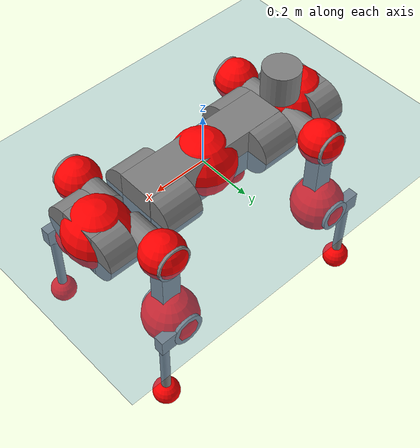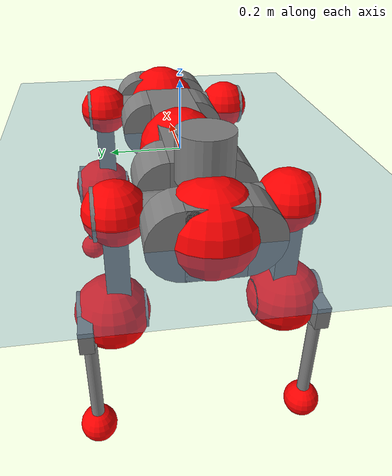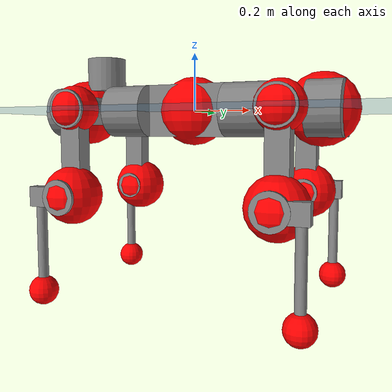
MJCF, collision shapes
<mujoco model="anymal_c">
  <compiler angle="radian" assetdir="assets" balanceinertia="true" inertiafromgeom="false"/>

  <option timestep="0.005" density="1.2" viscosity="2e-05"/>

  <size nkey="1"/>

  <visual>
    <quality shadowsize="8192"/>
    <map shadowclip="0.5"/>
  </visual>

  <default>
    <default class="/">
      <material specular="0" shininess="0.25"/>
      <geom contype="0" conaffinity="0" group="1" solref="-1000 -80"/>
      <site size="0.01 0.005 0.005" group="5"/>
      <general forcelimited="true" forcerange="-80 80" biastype="affine" gainprm="80" biasprm="0 -80 -2"/>
      <default class="anymal_c">
        <joint armature="0.01" damping="0.01" frictionloss="0.1"/>
        <default class="visual">
          <geom type="mesh" group="2"/>
          <default class="visual_zflip"/>
        </default>
        <default class="collision">
          <geom type="cylinder" group="3"/>
          <default class="foot">
            <geom size="0.03 0 0" type="sphere" condim="6" priority="1" friction="0.8 0.02 0.01" solimp="0.015 1 0.03"/>
          </default>
        </default>
      </default>
      <default class="reward_collision_sphere">
        <geom group="5" rgba="1 0 0 1"/>
      </default>
    </default>
  </default>

  <asset>
    <texture type="skybox" colorspace="auto" name="//unnamed_texture_0" builtin="gradient" rgb1="0.95 0.95 0.95" rgb2="0.95 0.95 0.95" width="100" height="600"/>
    <texture type="2d" colorspace="auto" name="texplane" builtin="checker" rgb1="0.345 0.575 0.748" rgb2="0.345 0.575 0.748" markrgb="1 1 1" width="512" height="512"/>
    <texture type="2d" colorspace="linear" name="base" file="base.png"/>
    <texture type="2d" colorspace="linear" name="top_shell" file="top_shell.png"/>
    <texture type="2d" colorspace="linear" name="bottom_shell" file="bottom_shell.png"/>
    <texture type="2d" colorspace="linear" name="remote" file="remote.png"/>
    <texture type="2d" colorspace="linear" name="hatch" file="hatch.png"/>
    <texture type="2d" colorspace="linear" name="handle" file="handle.png"/>
    <texture type="2d" colorspace="linear" name="face" file="face.png"/>
    <texture type="2d" colorspace="linear" name="battery" file="battery.png"/>
    <texture type="2d" colorspace="linear" name="lidar_cage" file="lidar_cage.png"/>
    <texture type="2d" colorspace="linear" name="depth_camera" file="depth_camera.png"/>
    <texture type="2d" colorspace="linear" name="wide_angle_camera" file="wide_angle_camera.png"/>
    <texture type="2d" colorspace="linear" name="lidar" file="lidar.png"/>
    <texture type="2d" colorspace="linear" name="drive" file="drive.png"/>
    <texture type="2d" colorspace="linear" name="hip_l" file="hip_l.png"/>
    <texture type="2d" colorspace="linear" name="shank_l" file="shank_l.png"/>
    <texture type="2d" colorspace="linear" name="foot" file="foot.png"/>
    <texture type="2d" colorspace="linear" name="thigh" file="thigh.png"/>
    <texture type="2d" colorspace="linear" name="shank_r" file="shank_r.png"/>
    <texture type="2d" colorspace="linear" name="hip_r" file="hip_r.png"/>
    <material name="MatPlane" class="/" texture="texplane" texuniform="true" texrepeat="2 2" specular="0.9" shininess="0.5"/>
    <material name="black_plastic" class="/" rgba="0.007 0.007 0.007 1"/>
    <material name="green" class="/" rgba="0.052 0.178 0.033 1"/>
    <material name="red" class="/" rgba="0.178 0.006 0.005 1"/>
    <material name="yellow" class="/" rgba="0.178 0.119 0.006 1"/>
    <material name="lwl" class="/" rgba="0.8 0.8 0.8 1"/>
    <material name="base" class="/" texture="base"/>
    <material name="top_shell" class="/" texture="top_shell"/>
    <material name="bottom_shell" class="/" texture="bottom_shell"/>
    <material name="hip_l" class="/" texture="hip_l"/>
    <material name="thigh" class="/" texture="thigh"/>
    <material name="shank_l" class="/" texture="shank_l"/>
    <material name="foot" class="/" texture="foot"/>
    <material name="hip_r" class="/" texture="hip_r"/>
    <material name="shank" class="/" texture="shank_r"/>
    <material name="hatch" class="/" texture="hatch"/>
    <material name="remote" class="/" texture="remote"/>
    <material name="handle" class="/" texture="handle"/>
    <material name="face" class="/" texture="face"/>
    <material name="depth_camera" class="/" texture="depth_camera"/>
    <material name="wide_angle_camera" class="/" texture="wide_angle_camera"/>
    <material name="battery" class="/" texture="battery"/>
    <material name="lidar_cage" class="/" texture="lidar_cage"/>
    <material name="lidar" class="/" texture="lidar"/>
    <material name="drive" class="/" texture="drive"/>
    <mesh name="base_0" class="/" file="base_0.obj"/>
    <mesh name="base_1" class="/" file="base_1.obj"/>
    <mesh name="base_2" class="/" file="base_2.obj"/>
    <mesh name="base_3" class="/" file="base_3.obj"/>
    <mesh name="base_4" class="/" file="base_4.obj"/>
    <mesh name="base_5" class="/" file="base_5.obj"/>
    <mesh name="top_shell" class="/" file="top_shell.obj"/>
    <mesh name="bottom_shell" class="/" file="bottom_shell.obj"/>
    <mesh name="remote" class="/" file="remote.obj"/>
    <mesh name="handle" class="/" file="handle.obj"/>
    <mesh name="face" class="/" file="face.obj"/>
    <mesh name="wide_angle_camera" class="/" file="wide_angle_camera.obj"/>
    <mesh name="depth_camera" class="/" file="depth_camera.obj"/>
    <mesh name="battery" class="/" file="battery.obj"/>
    <mesh name="lidar_cage" class="/" file="lidar_cage.obj"/>
    <mesh name="lidar" class="/" file="lidar.obj"/>
    <mesh name="drive" class="/" file="drive.obj"/>
    <mesh name="hip_l" class="/" file="hip_l.obj"/>
    <mesh name="thigh" class="/" file="thigh.obj"/>
    <mesh name="shank_l" class="/" file="shank_l.obj"/>
    <mesh name="foot" class="/" file="foot.obj"/>
    <mesh name="hip_r" class="/" file="hip_r.obj"/>
    <mesh name="hatch" class="/" file="hatch.obj"/>
    <mesh name="shank_r" class="/" file="shank_r.obj"/>
  </asset>

  <worldbody>
    <geom name="floor" class="/" size="100 100 0.125" type="plane" group="0" material="MatPlane"/>
    <light name="toplight_shadow" class="/" pos="0 0 5" dir="0.0990148 0.0990148 -0.990148" type="directional" ambient="0.04 0.04 0.04" diffuse="0.55 0.55 0.55" specular="0.12 0.12 0.12"/>
    <light name="toplight_fill" class="/" pos="0 0 5" dir="0.0990148 0.0990148 -0.990148" type="directional" castshadow="false" ambient="0.04 0.04 0.04" diffuse="0.3 0.3 0.3" specular="0.08 0.08 0.08"/>
    <body name="trunk" childclass="anymal_c" pos="-0.000172404 -0.00108142 0.000545516" quat="1 -1.22234e-05 2.55676e-05 1.07621e-05">
      <inertial pos="0.00155224 -0.00157268 0.0511828" quat="0.495942 0.502574 0.50881 0.492517" mass="18.1385" diaginertia="0.576901 0.505607 0.242619"/>
      <joint name="//unnamed_joint_0" type="free" armature="0" damping="0" frictionloss="0"/>
      <geom name="//unnamed_geom_1" class="visual" material="green" mesh="base_0"/>
      <geom name="//unnamed_geom_2" class="visual" material="yellow" mesh="base_1"/>
      <geom name="//unnamed_geom_3" class="visual" material="red" mesh="base_2"/>
      <geom name="//unnamed_geom_4" class="visual" material="black_plastic" mesh="base_3"/>
      <geom name="//unnamed_geom_5" class="visual" material="lwl" mesh="base_4"/>
      <geom name="//unnamed_geom_6" class="visual" material="base" mesh="base_5"/>
      <geom name="trunk_1" class="collision" size="0.286942 0.0692619 0.089051" type="box"/>
      <geom name="trunk_2" class="collision" size="0.089051 0.0717355" pos="0.21366 0.0671174 0" quat="0.707107 0 0.707107 0"/>
      <geom name="trunk_3" class="collision" size="0.089051 0.0717355" pos="-0.21366 0.0671174 0" quat="0.707107 0 0.707107 0"/>
      <geom name="trunk_4" class="collision" size="0.089051 0.0717355" pos="0.21366 -0.0671174 0" quat="0.707107 0 0.707107 0"/>
      <geom name="trunk_5" class="collision" size="0.089051 0.0717355" pos="-0.21366 -0.0671174 0" quat="0.707107 0 0.707107 0"/>
      <geom name="//unnamed_geom_12" class="visual" material="top_shell" mesh="top_shell"/>
      <geom name="//unnamed_geom_13" class="visual" material="bottom_shell" mesh="bottom_shell"/>
      <geom name="//unnamed_geom_14" class="visual" material="remote" mesh="remote"/>
      <geom name="//unnamed_geom_15" class="visual" material="handle" mesh="handle"/>
      <geom name="//unnamed_geom_16" class="visual" pos="0.407182 0 0" quat="1 0 0 0" material="face" mesh="face"/>
      <geom name="trunk_6" class="collision" size="0.05442 0.0692619 0.089051" pos="0.461211 0 0" type="box"/>
      <geom name="//unnamed_geom_18" class="collision" size="0.089051 0.05442" pos="0.461211 0.0671174 0" quat="0.707107 0 0.707107 0"/>
      <geom name="//unnamed_geom_19" class="collision" size="0.089051 0.05442" pos="0.461211 -0.0671174 0" quat="0.707107 0 0.707107 0"/>
      <geom name="//unnamed_geom_20" class="visual" pos="0.453502 0 -0.0303351" quat="0.965926 0 0.258819 0" material="depth_camera" mesh="depth_camera"/>
      <geom name="//unnamed_geom_21" class="visual" pos="0.503943 0 0.0153772" material="wide_angle_camera" mesh="wide_angle_camera"/>
      <geom name="//unnamed_geom_22" class="visual_zflip" pos="-0.407182 0 0" quat="0 0 0 1" material="face" mesh="face"/>
      <geom name="trunk_7" class="collision" size="0.05442 0.0692619 0.089051" pos="-0.461211 0 0" quat="0 0 0 1" type="box"/>
      <geom name="//unnamed_geom_24" class="collision" size="0.089051 0.05442" pos="-0.461211 -0.0671174 0" quat="0 -0.707107 0 0.707107"/>
      <geom name="//unnamed_geom_25" class="collision" size="0.089051 0.05442" pos="-0.461211 0.0671174 0" quat="0 -0.707107 0 0.707107"/>
      <geom name="//unnamed_geom_26" class="visual" pos="-0.453502 0 -0.0303351" quat="0 -0.258819 0 0.965926" material="depth_camera" mesh="depth_camera"/>
      <geom name="//unnamed_geom_27" class="visual_zflip" pos="-0.503943 0 0.0153772" quat="0 0 0 1" material="wide_angle_camera" mesh="wide_angle_camera"/>
      <geom name="//unnamed_geom_28" class="visual" material="battery" mesh="battery"/>
      <geom name="//unnamed_geom_29" class="visual" pos="0 0.0730046 0.0294993" quat="0.683013 -0.183013 0.183013 0.683013" material="depth_camera" mesh="depth_camera"/>
      <geom name="//unnamed_geom_30" class="visual" pos="0 -0.0730046 0.0294993" quat="0.683013 0.183013 0.183013 -0.683013" material="depth_camera" mesh="depth_camera"/>
      <geom name="//unnamed_geom_31" class="visual" pos="-0.357574 0 0.0754992" quat="1 0 0 0" material="lidar_cage" mesh="lidar_cage"/>
      <geom name="trunk_8" class="collision" size="0.0692619 0.0593673" pos="-0.357574 0 0.137131"/>
      <geom name="//unnamed_geom_33" class="visual" pos="-0.357574 -9.24233e-06 0.146068" quat="0.707107 0 0 -0.707107" material="lidar" mesh="lidar"/>
      <geom name="//unnamed_geom_34" class="visual" pos="0.294605 0.0997416 -1.17956e-09" quat="0.258819 0.965926 0 0" material="drive" mesh="drive"/>
      <geom name="//unnamed_geom_35" class="visual" pos="0.294605 -0.0997416 1.17956e-09" quat="0.258819 -0.965926 0 0" material="drive" mesh="drive"/>
      <geom name="//unnamed_geom_36" class="visual" pos="-0.294605 0.0997416 1.17956e-09" quat="0 0 0.965926 -0.258819" material="drive" mesh="drive"/>
      <geom name="//unnamed_geom_37" class="visual" pos="-0.294605 -0.0997416 -1.17956e-09" quat="0 0 -0.965926 -0.258819" material="drive" mesh="drive"/>
      <geom name="//unnamed_geom_38" class="visual" pos="0.113952 0 0.0749856" quat="1 0 0 0" material="hatch" mesh="hatch"/>
      <geom name="//unnamed_geom_39" class="reward_collision_sphere" size="0.118735"/>
      <geom name="//unnamed_geom_40" class="reward_collision_sphere" size="0.118735" pos="0.442055 0 0"/>
      <geom name="//unnamed_geom_41" class="reward_collision_sphere" size="0.118735" pos="-0.442055 0 0"/>
      <site name="imu" pos="0.24899 0.00652124 0.0421707" size="0.00989455"/>
      <camera name="track" pos="0 -1.91764 0" quat="0.707107 0.707107 0 0" mode="trackcom"/>
      <camera name="ego_camera" pos="0.442055 0 -0.041088" quat="-0.5 -0.5 0.5 0.5"/>
      <body name="LF_HIP" pos="0.295387 0.102707 0.00195906" quat="0.258841 0.96592 -0.00019754 0.000528048">
        <inertial pos="0.0554177 -0.0144785 -0.00914503" quat="-0.129796 0.708442 -0.134496 0.680569" mass="2.66639" diaginertia="0.00535124 0.00393197 0.00379012"/>
        <joint name="LF_HAA" pos="0 0 0" axis="0.999999 -0.000166853 0.00129157" range="-0.669845 0.476487" armature="0.00975007" damping="0.00226235" frictionloss="0.100644"/>
        <geom name="//unnamed_geom_42" class="visual" pos="0 -6.93882e-05 1.1397e-05" quat="0.258819 -0.965926 0 0" material="hip_l" mesh="hip_l"/>
        <geom name="//unnamed_geom_43" class="visual" pos="0.0588425 -0.0710147 -0.0415061" quat="0.183013 -0.683013 0.683013 0.183013" material="drive" mesh="drive"/>
        <geom name="//unnamed_geom_44" class="collision" size="0.0494728 0.0692619" pos="0.0588425 -0.0114673 -0.00709282" quat="-0.353553 -0.612372 0.612372 -0.353553"/>
        <body name="LF_THIGH" pos="0.0592882 -0.0677056 -0.0428826" quat="0.182976 -0.682877 0.683069 0.183346">
          <inertial pos="0.0311633 -1.73434e-05 -0.252133" quat="0.99283 -0.00214821 -0.0879152 0.0809578" mass="2.97448" diaginertia="0.0279007 0.0242145 0.00484886"/>
          <joint name="LF_HFE" pos="0 0 0" axis="0.999979 -0.00427342 0.00485716" range="-3.1599 3.1801" armature="0.0105779" damping="0.0049604" frictionloss="0.0938859"/>
          <geom name="//unnamed_geom_45" class="visual" pos="0.000468054 7.37544e-07 0" quat="0.707107 0 0 -0.707107" material="thigh" mesh="thigh"/>
          <geom name="//unnamed_geom_46" class="collision" size="0.0643146 0.0395782" pos="0.0392938 0 0" quat="0.5 0.5 -0.5 -0.5"/>
          <geom name="//unnamed_geom_47" class="collision" size="0.0371046 0.0296837 0.139824" pos="0.0294704 0 -0.145158" quat="0.707107 0 0 -0.707107" type="box"/>
          <geom name="//unnamed_geom_48" class="visual" pos="0.0985292 0 -0.292752" quat="1 0 0 0" material="drive" mesh="drive"/>
          <geom name="//unnamed_geom_49" class="collision" size="0.0494728 0.0692619" pos="0.0297651 0 -0.292752" quat="0.707107 0 0.707107 0"/>
          <geom name="//unnamed_geom_50" class="reward_collision_sphere" size="0.0791564" pos="0.0245586 0 0"/>
          <body name="LF_SHANK" pos="0.100035 -0.002388 -0.292403" quat="1 -3.01617e-05 3.56336e-05 0.00013623">
            <inertial pos="0.00558164 -0.0587987 -0.0852411" quat="0.99294 -0.115647 -0.000720219 -0.0263501" mass="0.56763" diaginertia="0.0091974 0.00770417 0.00124528"/>
            <joint name="LF_KFE" pos="0 0 0" axis="0.999998 0.000110698 -0.00201498" range="-3.18702 3.13624" armature="0.00991292" damping="0.0101158" frictionloss="0.099055"/>
            <geom name="//unnamed_geom_51" class="visual" pos="0.000152622 0.00081379 0" quat="0.707107 0 0 -0.707107" material="shank_l" mesh="shank_l"/>
            <geom name="LF_kfe_act" class="collision" size="0.0593673 0.0197891" pos="0.0196469 0 0" quat="0.5 0.5 -0.5 -0.5"/>
            <geom name="//unnamed_geom_53" class="collision" size="0.0568927 0.0333941 0.0187996" pos="0.0196469 -0.0551312 0" quat="0.5 0.5 -0.5 -0.5" type="box"/>
            <geom name="//unnamed_geom_54" class="visual" pos="0.0128196 -0.084066 -0.347163" quat="0.382683 0 0 -0.92388" material="foot" mesh="foot"/>
            <geom name="LF_calf" class="collision" size="0.0173155 0.139763" pos="0.0128196 -0.0843282 -0.173581" quat="0.707107 0 0 -0.707107"/>
            <geom name="LF_foot" class="foot" size="0.0301683" pos="0.0128196 -0.0843282 -0.324051" quat="0.707107 0 0 -0.707107"/>
            <geom name="//unnamed_geom_57" class="reward_collision_sphere" size="0.0989455" pos="-0.0491173 0 0"/>
            <geom name="//unnamed_geom_58" class="reward_collision_sphere" size="0.0494728" pos="0.0128196 -0.0843282 -0.324051"/>
            <site name="LF_foot" class="foot" pos="0.0128196 -0.0843282 -0.324051" quat="0.707107 0 0 -0.707107" size="0.00989455"/>
          </body>
        </body>
      </body>
      <body name="RF_HIP" pos="0.295325 -0.100267 0.00130414" quat="0.258988 -0.965881 6.88672e-07 -0.000138593">
        <inertial pos="0.0568325 0.0143663 -0.00915923" quat="0.134627 0.67998 0.128777 0.709168" mass="2.65116" diaginertia="0.00545852 0.0038882 0.00384606"/>
        <joint name="RF_HAA" pos="0 0 0" axis="0.999994 0.00163352 -0.00318265" range="-0.496996 0.727336" armature="0.00940498" damping="0.00467936" frictionloss="0.0938484"/>
        <geom name="//unnamed_geom_59" class="visual" pos="0 6.93877e-05 1.13969e-05" quat="0.258819 0.965926 0 0" material="hip_r" mesh="hip_r"/>
        <geom name="//unnamed_geom_60" class="visual" pos="0.0588425 0.0710147 -0.0415061" quat="0.183013 0.683013 0.683013 -0.183013" material="drive" mesh="drive"/>
        <geom name="//unnamed_geom_61" class="collision" size="0.0494728 0.0692619" pos="0.0588425 0.0114673 -0.00709282" quat="-0.353553 0.612372 0.612372 0.353553"/>
        <body name="RF_THIGH" pos="0.0612441 0.0720578 -0.0436285" quat="0.182989 0.682837 0.683147 -0.183192">
          <inertial pos="0.0310668 -0.00245883 -0.252406" quat="0.992769 -0.0055228 -0.0805146 0.0888605" mass="3.05179" diaginertia="0.028353 0.0246768 0.00493387"/>
          <joint name="RF_HFE" pos="0 0 0" axis="0.999993 -0.00226611 0.00310662" range="-3.18616 3.1401" armature="0.0101603" damping="0.00622053" frictionloss="0.0988706"/>
          <geom name="//unnamed_geom_62" class="visual" pos="0.000468054 7.37544e-07 0" quat="0.707107 0 0 -0.707107" material="thigh" mesh="thigh"/>
          <geom name="//unnamed_geom_63" class="collision" size="0.0643146 0.0395782" pos="0.0392938 0 0" quat="0.5 0.5 0.5 0.5"/>
          <geom name="//unnamed_geom_64" class="collision" size="0.0371046 0.0296837 0.139824" pos="0.0294704 0 -0.145158" quat="0.707107 0 0 0.707107" type="box"/>
          <geom name="//unnamed_geom_65" class="visual" pos="0.0985292 0 -0.292752" quat="1 0 0 0" material="drive" mesh="drive"/>
          <geom name="//unnamed_geom_66" class="collision" size="0.0494728 0.0692619" pos="0.0297651 0 -0.292752" quat="0.707107 0 0.707107 0"/>
          <geom name="//unnamed_geom_67" class="reward_collision_sphere" size="0.0791564" pos="0.0245586 0 0"/>
          <body name="RF_SHANK" pos="0.0963415 0.000564042 -0.292983" quat="1 0.000822088 -0.000204749 0.000136495">
            <inertial pos="0.0045332 0.0590077 -0.082129" quat="0.992931 0.115933 -0.00105458 0.025422" mass="0.573191" diaginertia="0.0092328 0.00749302 0.00126282"/>
            <joint name="RF_KFE" pos="0 0 0" axis="0.999915 0.00485109 -0.0121365" range="-3.14326 3.13654" armature="0.0109067" damping="0.0196474" frictionloss="0.0909165"/>
            <geom name="//unnamed_geom_68" class="visual" pos="0.000152621 -0.000813788 0" quat="0.707107 0 0 0.707107" material="shank" mesh="shank_r"/>
            <geom name="RF_kfe_act" class="collision" size="0.0593673 0.0197891" pos="0.0196469 0 0" quat="0.5 0.5 0.5 0.5"/>
            <geom name="//unnamed_geom_70" class="collision" size="0.0568927 0.0333941 0.0187996" pos="0.0196469 0.0551312 0" quat="0.5 0.5 0.5 0.5" type="box"/>
            <geom name="//unnamed_geom_71" class="visual" pos="0.0128196 0.084066 -0.347163" quat="0.382683 0 0 0.92388" material="foot" mesh="foot"/>
            <geom name="RF_calf" class="collision" size="0.0173155 0.139763" pos="0.0128196 0.0843282 -0.173581" quat="0.707107 0 0 0.707107"/>
            <geom name="RF_foot" class="foot" size="0.0295153" pos="0.0128196 0.0843282 -0.324051" quat="0.707107 0 0 0.707107"/>
            <geom name="//unnamed_geom_74" class="reward_collision_sphere" size="0.0989455" pos="-0.0491173 0 0"/>
            <geom name="//unnamed_geom_75" class="reward_collision_sphere" size="0.0494728" pos="0.0128196 0.0843282 -0.324051"/>
            <site name="RF_foot" class="foot" pos="0.0128196 0.0843282 -0.324051" quat="0.707107 0 0 0.707107" size="0.00989455"/>
          </body>
        </body>
      </body>
      <body name="LH_HIP" pos="-0.294276 0.0997413 -0.00135043" quat="0.000516531 -0.000133693 0.965878 -0.258997">
        <inertial pos="0.0556192 0.0129942 -0.00902843" quat="0.139253 0.67901 0.125994 0.709704" mass="2.63126" diaginertia="0.00530721 0.0039396 0.00371651"/>
        <joint name="LH_HAA" pos="0 0 0" axis="0.999993 0.00171603 -0.00325015" stiffness="0.00235295" range="-0.500221 0.742184" armature="0.00987507" damping="0.0120484" frictionloss="0.0979904"/>
        <geom name="//unnamed_geom_76" class="visual" pos="0 6.93877e-05 1.13969e-05" quat="-0.258819 -0.965926 0 0" material="hip_r" mesh="hip_r"/>
        <geom name="//unnamed_geom_77" class="visual" pos="0.0588425 0.0710147 -0.0415061" quat="0.183013 0.683013 0.683013 -0.183013" material="drive" mesh="drive"/>
        <geom name="//unnamed_geom_78" class="collision" size="0.0494728 0.0692619" pos="0.0588425 0.0114673 -0.00709282" quat="-0.353553 0.612372 0.612372 0.353553"/>
        <body name="LH_THIGH" pos="0.057753 0.0687977 -0.0450121" quat="0.182949 0.682923 0.683123 -0.182998">
          <inertial pos="0.0303072 -0.000553849 -0.254397" quat="0.99269 -0.00610261 -0.0810858 0.0891858" mass="3.02564" diaginertia="0.0275718 0.0236244 0.00469078"/>
          <joint name="LH_HFE" pos="0 0 0" axis="0.999991 -0.0020464 -0.00377352" range="-3.16599 3.13946" armature="0.0103444" damping="0" frictionloss="0.0962473"/>
          <geom name="//unnamed_geom_79" class="visual" pos="0.000468054 7.37544e-07 0" quat="0.707107 0 0 -0.707107" material="thigh" mesh="thigh"/>
          <geom name="//unnamed_geom_80" class="collision" size="0.0643146 0.0395782" pos="0.0392938 0 0" quat="0.5 0.5 -0.5 -0.5"/>
          <geom name="//unnamed_geom_81" class="collision" size="0.0371046 0.0296837 0.139824" pos="0.0294704 0 -0.145158" quat="0.707107 0 0 -0.707107" type="box"/>
          <geom name="//unnamed_geom_82" class="visual" pos="0.0985292 0 -0.292752" quat="1 0 0 0" material="drive" mesh="drive"/>
          <geom name="//unnamed_geom_83" class="collision" size="0.0494728 0.0692619" pos="0.0297651 0 -0.292752" quat="0.707107 0 0.707107 0"/>
          <geom name="//unnamed_geom_84" class="reward_collision_sphere" size="0.0791564" pos="0.0245586 0 0"/>
          <body name="LH_SHANK" pos="0.0983759 -0.002733 -0.294385" quat="1 -4.33082e-05 -0.000122417 0.000113328">
            <inertial pos="0.00481479 0.0587814 -0.0829633" quat="0.993036 0.114898 -0.000907701 0.0260207" mass="0.569088" diaginertia="0.00948626 0.00744996 0.00127622"/>
            <joint name="LH_KFE" pos="0 0 0" axis="0.99996 0.00633843 0.00629908" stiffness="6.42135e-05" range="-3.09803 3.1203" armature="0.00981517" damping="0.0121495" frictionloss="0.100638"/>
            <geom name="//unnamed_geom_85" class="visual" pos="0.000152621 -0.000813788 0" quat="-0.707107 0 0 -0.707107" material="shank" mesh="shank_r"/>
            <geom name="LH_kfe_act" class="collision" size="0.0593673 0.0197891" pos="0.0196469 0 0" quat="0.5 0.5 -0.5 -0.5"/>
            <geom name="//unnamed_geom_87" class="collision" size="0.0568927 0.0333941 0.0187996" pos="0.0196469 0.0551312 0" quat="0.5 0.5 -0.5 -0.5" type="box"/>
            <geom name="//unnamed_geom_88" class="visual" pos="0.0128196 0.084066 -0.347163" quat="-0.382683 0 0 -0.92388" material="foot" mesh="foot"/>
            <geom name="LH_calf" class="collision" size="0.0173155 0.139763" pos="0.0128196 0.0843282 -0.173581" quat="0.707107 0 0 -0.707107"/>
            <geom name="LH_foot" class="foot" size="0.0301943" pos="0.0128196 0.0843282 -0.324051" quat="0.707107 0 0 -0.707107"/>
            <geom name="//unnamed_geom_91" class="reward_collision_sphere" size="0.0989455" pos="-0.0491173 0 0"/>
            <geom name="//unnamed_geom_92" class="reward_collision_sphere" size="0.0494728" pos="0.0128196 0.0843282 -0.324051"/>
            <site name="LH_foot" class="foot" pos="0.0128196 0.0843282 -0.324051" quat="0.707107 0 0 -0.707107" size="0.00989455"/>
          </body>
        </body>
      </body>
      <body name="RH_HIP" pos="-0.295297 -0.0992155 0.00132324" quat="0.000356193 -0.000431322 -0.965855 -0.259083">
        <inertial pos="0.0549002 -0.013189 -0.00905951" quat="-0.128111 0.707662 -0.134609 0.681676" mass="2.68817" diaginertia="0.00540244 0.00392113 0.00384748"/>
        <joint name="RH_HAA" pos="0 0 0" axis="0.999972 0.000733219 -0.00748011" range="-0.730332 0.45214" armature="0.00991054" damping="0.0115334" frictionloss="0.101599"/>
        <geom name="//unnamed_geom_93" class="visual" pos="0 -6.93882e-05 1.1397e-05" quat="-0.258819 0.965926 0 0" material="hip_l" mesh="hip_l"/>
        <geom name="//unnamed_geom_94" class="visual" pos="0.0588425 -0.0710147 -0.0415061" quat="-0.183013 0.683013 -0.683013 -0.183013" material="drive" mesh="drive"/>
        <geom name="//unnamed_geom_95" class="collision" size="0.0494728 0.0692619" pos="0.0588425 -0.0114673 -0.00709282" quat="0.353553 0.612372 -0.612372 0.353553"/>
        <body name="RH_THIGH" pos="0.0589061 -0.0684922 -0.0435981" quat="-0.182886 0.68261 -0.68366 -0.182223">
          <inertial pos="0.0304891 -0.00206459 -0.252201" quat="0.993268 -0.00710038 -0.0799762 0.0834941" mass="2.98338" diaginertia="0.0278964 0.0242325 0.00479167"/>
          <joint name="RH_HFE" pos="0 0 0" axis="0.999954 -0.00959274 -0.000452558" range="-3.14361 3.14057" armature="0.0097405" damping="0.00796301" frictionloss="0.0987141"/>
          <geom name="//unnamed_geom_96" class="visual" pos="0.000468054 7.37544e-07 0" quat="0.707107 0 0 -0.707107" material="thigh" mesh="thigh"/>
          <geom name="//unnamed_geom_97" class="collision" size="0.0643146 0.0395782" pos="0.0392938 0 0" quat="0.5 0.5 0.5 0.5"/>
          <geom name="//unnamed_geom_98" class="collision" size="0.0371046 0.0296837 0.139824" pos="0.0294704 0 -0.145158" quat="0.707107 0 0 0.707107" type="box"/>
          <geom name="//unnamed_geom_99" class="visual" pos="0.0985292 0 -0.292752" quat="1 0 0 0" material="drive" mesh="drive"/>
          <geom name="//unnamed_geom_100" class="collision" size="0.0494728 0.0692619" pos="0.0297651 0 -0.292752" quat="0.707107 0 0.707107 0"/>
          <geom name="//unnamed_geom_101" class="reward_collision_sphere" size="0.0791564" pos="0.0245586 0 0"/>
          <body name="RH_SHANK" pos="0.0954877 0.000137143 -0.29202" quat="1 -0.000407558 0.00020574 0.000246373">
            <inertial pos="0.00792585 -0.058506 -0.0820043" quat="0.992676 -0.118893 -1.44397e-06 -0.0214344" mass="0.565108" diaginertia="0.00949619 0.00754423 0.00127069"/>
            <joint name="RH_KFE" pos="0 0 0" axis="0.999989 0.00473807 0.000519128" range="-3.15023 3.17725" armature="0.00894379" damping="0.00803255" frictionloss="0.0976654"/>
            <geom name="//unnamed_geom_102" class="visual" pos="0.000152622 0.00081379 0" quat="0.707107 0 0 -0.707107" material="shank_l" mesh="shank_l"/>
            <geom name="RH_kfe_act" class="collision" size="0.0593673 0.0197891" pos="0.0196469 0 0" quat="0.5 0.5 0.5 0.5"/>
            <geom name="//unnamed_geom_104" class="collision" size="0.0568927 0.0333941 0.0187996" pos="0.0196469 -0.0551312 0" quat="0.5 0.5 0.5 0.5" type="box"/>
            <geom name="//unnamed_geom_105" class="visual" pos="0.0128196 -0.084066 -0.347163" quat="0.382683 0 0 -0.92388" material="foot" mesh="foot"/>
            <geom name="RH_calf" class="collision" size="0.0173155 0.139763" pos="0.0128196 -0.0843282 -0.173581" quat="0.707107 0 0 0.707107"/>
            <geom name="RH_foot" class="foot" size="0.0295186" pos="0.0128196 -0.0843282 -0.324051" quat="0.707107 0 0 0.707107"/>
            <geom name="//unnamed_geom_108" class="reward_collision_sphere" size="0.0989455" pos="-0.0491173 0 0"/>
            <geom name="//unnamed_geom_109" class="reward_collision_sphere" size="0.0494728" pos="0.0128196 -0.0843282 -0.324051"/>
            <site name="RH_foot" class="foot" pos="0.0128196 -0.0843282 -0.324051" quat="0.707107 0 0 0.707107" size="0.00989455"/>
          </body>
        </body>
      </body>
    </body>
  </worldbody>

  <contact>
    <pair class="/" geom1="floor" geom2="LF_foot" name="//unnamed_contact_0"/>
    <pair class="/" geom1="floor" geom2="RF_foot" name="//unnamed_contact_1"/>
    <pair class="/" geom1="floor" geom2="LH_foot" name="//unnamed_contact_2"/>
    <pair class="/" geom1="floor" geom2="RH_foot" name="//unnamed_contact_3"/>
  </contact>

  <actuator>
    <general name="LF_HAA" class="/" joint="LF_HAA" forcerange="-87.0945 87.0945" gainprm="82.8992" biasprm="0 -82.8992 -1.9535"/>
    <general name="LF_HFE" class="/" joint="LF_HFE" forcerange="-79.2069 79.2069" gainprm="82.8992" biasprm="0 -82.8992 -1.9535"/>
    <general name="LF_KFE" class="/" joint="LF_KFE" forcerange="-80.7612 80.7612" gainprm="82.8992" biasprm="0 -82.8992 -1.9535"/>
    <general name="RF_HAA" class="/" joint="RF_HAA" forcerange="-86.252 86.252" gainprm="82.8992" biasprm="0 -82.8992 -1.9535"/>
    <general name="RF_HFE" class="/" joint="RF_HFE" forcerange="-87.294 87.294" gainprm="82.8992" biasprm="0 -82.8992 -1.9535"/>
    <general name="RF_KFE" class="/" joint="RF_KFE" forcerange="-80.8881 80.8881" gainprm="82.8992" biasprm="0 -82.8992 -1.9535"/>
    <general name="LH_HAA" class="/" joint="LH_HAA" forcerange="-79.4103 79.4103" gainprm="82.8992" biasprm="0 -82.8992 -1.9535"/>
    <general name="LH_HFE" class="/" joint="LH_HFE" forcerange="-78.3886 78.3886" gainprm="82.8992" biasprm="0 -82.8992 -1.9535"/>
    <general name="LH_KFE" class="/" joint="LH_KFE" forcerange="-81.9044 81.9044" gainprm="82.8992" biasprm="0 -82.8992 -1.9535"/>
    <general name="RH_HAA" class="/" joint="RH_HAA" forcerange="-72.8495 72.8495" gainprm="82.8992" biasprm="0 -82.8992 -1.9535"/>
    <general name="RH_HFE" class="/" joint="RH_HFE" forcerange="-78.4534 78.4534" gainprm="82.8992" biasprm="0 -82.8992 -1.9535"/>
    <general name="RH_KFE" class="/" joint="RH_KFE" forcerange="-79.6496 79.6496" gainprm="82.8992" biasprm="0 -82.8992 -1.9535"/>
  </actuator>

  <sensor>
    <gyro site="imu" name="imu_angular_velocity"/>
    <velocimeter site="imu" name="imu_linear_velocity"/>
    <framelinvel objtype="site" objname="LF_foot" name="LF_foot_global_linear_velocity"/>
    <framelinvel objtype="site" objname="RF_foot" name="RF_foot_global_linear_velocity"/>
    <framelinvel objtype="site" objname="LH_foot" name="LH_foot_global_linear_velocity"/>
    <framelinvel objtype="site" objname="RH_foot" name="RH_foot_global_linear_velocity"/>
  </sensor>

  <keyframe>
    <key name="home" qpos="0 0 0.55 1 0 0 0 0 0.4 -0.8 0 -0.4 0.8 0 -0.4 0.8 0 0.4 -0.8"/>
  </keyframe>
</mujoco>
